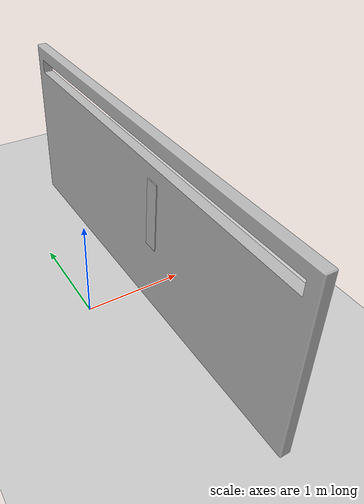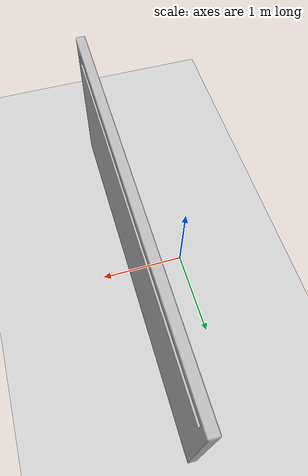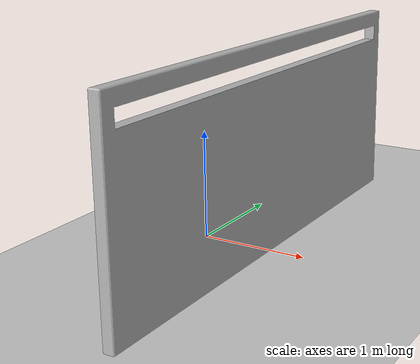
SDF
<?xml version="1.0" ?>
<sdf version="1.6">
  <world name="textured_box_world">

    <!-- Sunlight -->
    <light name="sun" type="directional">
      <cast_shadows>1</cast_shadows>
      <pose>0 0 -10 0 -0 0</pose>
      <diffuse>0.8 0.8 0.8 1</diffuse>
      <specular>0.2 0.2 0.2 1</specular>
      <attenuation>
        <range>1000</range>
        <constant>0.9</constant>
        <linear>0.01</linear>
        <quadratic>0.001</quadratic>
      </attenuation>
      <direction>0 0.5 -0.9</direction>
    </light>

    <!-- Ground plane -->
    <include>
      <uri>model://ground_plane</uri>
    </include>

    <!-- Textured box model -->
    <model name="textured_box">
      <static>true</static>
      <pose>0.537 -0.252 1.102 -0.011 -0.001 -1.567</pose>
      <link name="box_link">
        <visual name="box_visual">
          <geometry>
            <box>
              <size>0.15 0.01 0.7</size>
            </box>
          </geometry>
          <material>
            <script>
              <uri>file://media/materials/scripts/pannel_out.material</uri>
              <name>PannelOut</name>
            </script>
          </material>
        </visual>
      </link>
    </model>

    <light name="elevator_panel_light" type="point">
    <pose>0.537 -0.252 1.102 -0.011 -0.001 -1.567</pose>
    <diffuse>1 1 1 1</diffuse>
    <specular>0.1 0.1 0.1 1</specular>
    <attenuation>
        <range>5.0</range>
        <constant>0.9</constant>
        <linear>0.01</linear>
        <quadratic>0.001</quadratic>
    </attenuation>
    <cast_shadows>true</cast_shadows>
    </light>

    <model name='aws_robomaker_residential_RoomWall_01'>
      <link name='link'>
        <inertial>
          <mass>100</mass>
        </inertial>
        <collision name='collision'>
          <geometry>
            <mesh>
              <uri>model://aws_robomaker_residential_RoomWall_01/meshes/aws_RoomWall_01_collision.DAE</uri>
              <scale>1 1 1</scale>
            </mesh>
          </geometry>
          <max_contacts>10</max_contacts>
          <surface>
            <contact>
              <ode/>
            </contact>
            <bounce/>
            <friction>
              <torsional>
                <ode/>
              </torsional>
              <ode/>
            </friction>
          </surface>
        </collision>
        <visual name='visual'>
          <geometry>
            <mesh>
              <uri>model://aws_robomaker_residential_RoomWall_01/meshes/aws_RoomWall_01_visual.DAE</uri>
            </mesh>
          </geometry>
          <meta>
            <layer>2</layer>
          </meta>
        </visual>
        <self_collide>0</self_collide>
        <enable_wind>0</enable_wind>
        <kinematic>0</kinematic>
      </link>
      <static>1</static>
      <pose>0.6193 0.0859 0 0 0 1.571</pose>
    </model>

  </world>
</sdf>
